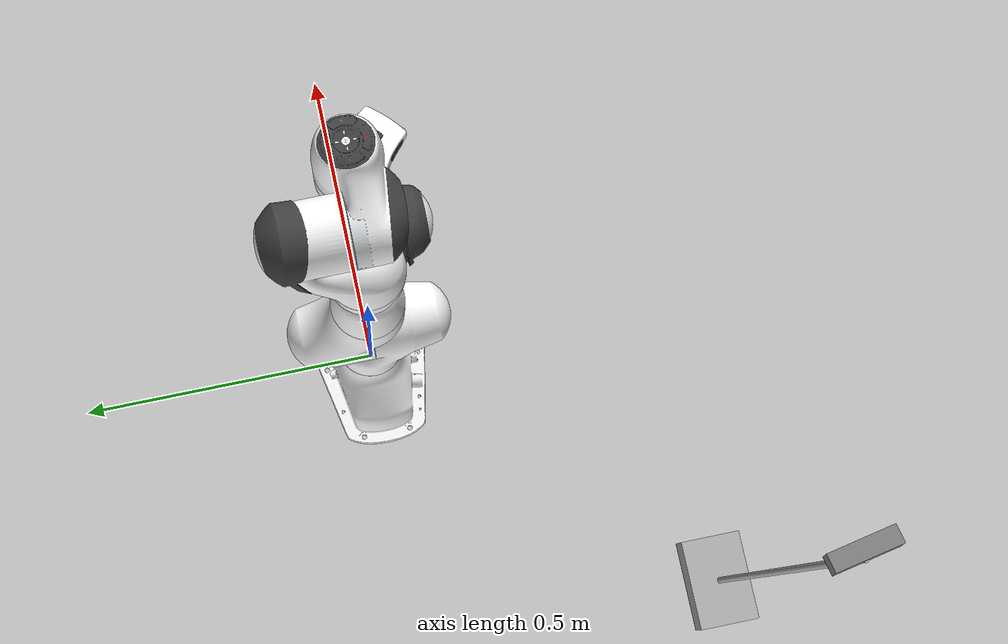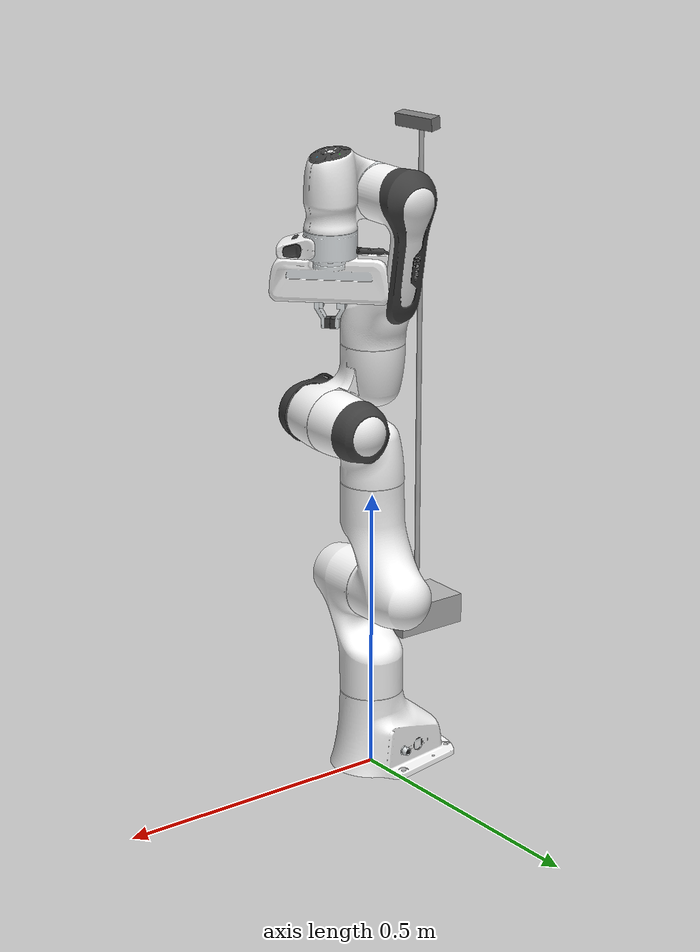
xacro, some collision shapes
<?xml version="1.0" ?>
<!-- |    This document was autogenerated by xacro from /opt/ros/kinetic/share/moveit_resources/panda_description/urdf/panda.urdf | -->
<!-- |    EDITING THIS FILE BY HAND IS NOT RECOMMENDED                                 | -->
<robot name="panda" xmlns:xacro="http://www.ros.org/wiki/xacro">
    <link name="panda_link0">
        <visual>
            <geometry>
                <mesh filename="package://arm_description/meshes/visual/link0.dae" />
            </geometry>
        </visual>
        <collision>
            <geometry>
                <mesh filename="package://arm_description/meshes/collision/link0.stl" />
            </geometry>
        </collision>
        <inertial>
          <origin xyz="-0.041018 -0.00014 0.049974" rpy="0 0 0" />
          <mass value="0.629769"/>
          <inertia ixx="0.00315" iyy="0.00388" izz="0.004285" ixy="8.2904E-7" ixz="0.00015" iyz="8.2299E-6"/>
        </inertial>
    </link>
    <!-- Add World Joint -->
    <link name="world"/>

    <joint name="world_joint" type="fixed">
        <parent link="world"/>
        <child link="panda_link0"/>
        <origin xyz="0.0 0 0" rpy="0 0 0"/>
    </joint>

    <link name="panda_link1">
        <visual>
            <geometry>
                <mesh filename="package://arm_description/meshes/visual/link1.dae" />
            </geometry>
        </visual>
        <collision>
            <geometry>
                <mesh filename="package://arm_description/meshes/collision/link1.stl" />
            </geometry>
        </collision>
        <inertial>
          <origin xyz="0.003875 0.002081 -0.04762" rpy="0 0 0" />
          <mass value="4.970684"/>
          <inertia ixx="0.70337" iyy="0.70661" izz="0.009117" ixy="-0.000139" ixz="0.006772" iyz="0.019169"/>
        </inertial>
    </link>
    <joint name="panda_joint1" type="revolute">
        <safety_controller k_position="100.0" k_velocity="40.0" soft_lower_limit="-2.8973" soft_upper_limit="2.8973" />
        <origin rpy="0 0 0" xyz="0 0 0.333" />
        <parent link="panda_link0" />
        <child link="panda_link1" />
        <axis xyz="0 0 1" />
        <limit effort="87" lower="-2.9671" upper="2.9671" velocity="2.3925" />
        <dynamics D="1" K="7000" damping="10" friction="0.1" mu_coulomb="0" mu_viscous="16" />
    </joint>
    <link name="panda_link2">
        <visual>
            <geometry>
                <mesh filename="package://arm_description/meshes/visual/link2.dae" />
            </geometry>
        </visual>
        <collision>
            <geometry>
                <mesh filename="package://arm_description/meshes/collision/link2.stl" />
            </geometry>
        </collision>
        <inertial>
          <origin xyz="-0.003141 -0.02872  0.003495" rpy="0 0 0" />
          <mass value="0.646926"/>
          <inertia ixx="0.007962" iyy="2.811E-2" izz="2.5995E-2" ixy="-3.925E-3" ixz="1.0254E-2" iyz="7.04E-4"/>
        </inertial>
    </link>
    <joint name="panda_joint2" type="revolute">
        <safety_controller k_position="100.0" k_velocity="40.0" soft_lower_limit="-1.7628" soft_upper_limit="1.7628" />
        <origin rpy="-1.57079632679 0 0" xyz="0 0 0" />
        <parent link="panda_link1" />
        <child link="panda_link2" />
        <axis xyz="0 0 1" />
        <limit effort="87" lower="-1.8326" upper="1.8326" velocity="2.3925" />
        <dynamics D="1" K="7000" damping="10" friction="0.1" mu_coulomb="0" mu_viscous="16" />
    </joint>
    <link name="panda_link3">
        <visual>
            <geometry>
                <mesh filename="package://arm_description/meshes/visual/link3.dae" />
            </geometry>
        </visual>
        <collision>
            <geometry>
                <mesh filename="package://arm_description/meshes/collision/link3.stl" />
            </geometry>
        </collision>
        <inertial>
          <origin xyz="2.7518E-2 3.9252E-2 -6.6502E-2" rpy="0 0 0" />
          <mass value="3.228604"/>
          <inertia ixx="3.7242E-2" iyy="3.6155E-2" izz="1.083E-2" ixy="-4.761E-3" ixz="-1.1396E-2" iyz="-1.2805E-2"/>
        </inertial>
    </link>
    <joint name="panda_joint3" type="revolute">
        <safety_controller k_position="100.0" k_velocity="40.0" soft_lower_limit="-2.8973" soft_upper_limit="2.8973" />
        <origin rpy="1.57079632679 0 0" xyz="0 -0.316 0" />
        <parent link="panda_link2" />
        <child link="panda_link3" />
        <axis xyz="0 0 1" />
        <limit effort="87" lower="-2.9671" upper="2.9671" velocity="2.3925" />
        <dynamics D="1" K="7000" damping="10" friction="0.1" mu_coulomb="0" mu_viscous="16" />
    </joint>
    <link name="panda_link4">
        <visual>
            <geometry>
                <mesh filename="package://arm_description/meshes/visual/link4.dae" />
            </geometry>
        </visual>
        <collision>
            <geometry>
                <mesh filename="package://arm_description/meshes/collision/link4.stl" />
            </geometry>
        </collision>
        <inertial>
          <origin xyz="-5.317E-2 1.04419E-1 2.7454E-2" rpy="0 0 0" />
          <mass value="3.587895"/>
          <inertia ixx="2.5853E-2" iyy="1.9552E-2" izz="2.8323E-2" ixy="7.796E-3" ixz="-1.332E-3" iyz="8.641E-3"/>
        </inertial>
    </link>
    <joint name="panda_joint4" type="revolute">
        <safety_controller k_position="100.0" k_velocity="40.0" soft_lower_limit="-3.0718" soft_upper_limit="0.0175" />
        <origin rpy="1.57079632679 0 0" xyz="0.0825 0 0" />
        <parent link="panda_link3" />
        <child link="panda_link4" />
        <axis xyz="0 0 1" />
        <limit effort="87" lower="-3.1416" upper="0.0873" velocity="2.3925" />
        <dynamics D="1" K="7000" damping="10" friction="0.1" mu_coulomb="0" mu_viscous="16" />
    </joint>
    <link name="panda_link5">
        <visual>
            <geometry>
                <mesh filename="package://arm_description/meshes/visual/link5.dae" />
            </geometry>
        </visual>
        <collision>
            <geometry>
                <mesh filename="package://arm_description/meshes/collision/link5.stl" />
            </geometry>
        </collision>
        <inertial>
          <origin xyz="-1.1953E-2 4.1065E-2 -3.8437E-2" rpy="0 0 0" />
          <mass value="1.225946"/>
          <inertia ixx="3.5549E-2" iyy="2.9474E-2" izz="8.627E-3" ixy="-2.117E-3" ixz="-4.037E-3" iyz="2.29E-4"/>
        </inertial>
    </link>
    <joint name="panda_joint5" type="revolute">
        <safety_controller k_position="100.0" k_velocity="40.0" soft_lower_limit="-2.8973" soft_upper_limit="2.8973" />
        <origin rpy="-1.57079632679 0 0" xyz="-0.0825 0.384 0" />
        <parent link="panda_link4" />
        <child link="panda_link5" />
        <axis xyz="0 0 1" />
        <limit effort="12" lower="-2.9671" upper="2.9671" velocity="2.8710" />
        <dynamics D="1" K="7000" damping="10" friction="0.1" mu_coulomb="0" mu_viscous="16" />
    </joint>
    <link name="panda_link6">
        <visual>
            <geometry>
                <mesh filename="package://arm_description/meshes/visual/link6.dae" />
            </geometry>
        </visual>
        <collision>
            <geometry>
                <mesh filename="package://arm_description/meshes/collision/link6.stl" />
            </geometry>
        </collision>
        <inertial>
          <origin xyz="6.0149E-2 -1.4117E-2 -1.0517E-2" rpy="0 0 0" />
          <mass value="1.666555"/>
          <inertia ixx="1.964E-3" iyy="4.354E-3" izz="5.433E-3" ixy="1.09E-4" ixz="-1.158E-3" iyz="3.41E-4"/>
        </inertial>
    </link>
    <joint name="panda_joint6" type="revolute">
        <safety_controller k_position="100.0" k_velocity="40.0" soft_lower_limit="-0.0175" soft_upper_limit="3.7525" />
        <origin rpy="1.57079632679 0 0" xyz="0 0 0" />
        <parent link="panda_link5" />
        <child link="panda_link6" />
        <axis xyz="0 0 1" />
        <limit effort="12" lower="-0.0873" upper="3.8223" velocity="2.8710" />
        <dynamics D="1" K="7000" damping="10" friction="0.1" mu_coulomb="0" mu_viscous="16" />
    </joint>
    <link name="panda_link7">
        <visual>
            <geometry>
                <mesh filename="package://arm_description/meshes/visual/link7.dae" />
            </geometry>
        </visual>
        <collision>
            <geometry>
                <mesh filename="package://arm_description/meshes/collision/link7.stl" />
            </geometry>
        </collision>
        <inertial>
          <origin xyz="1.0517E-2 -4.252E-3 6.1597E-2" rpy="0 0 0" />
          <mass value="7.35522E-1"/>
          <inertia ixx="1.2516E-2" iyy="1.0027E-2" izz="4.815E-3" ixy="-4.28E-4" ixz="-1.19E-3" iyz="-7.41E-4"/>
        </inertial>
    </link>
    <joint name="panda_joint7" type="revolute">
        <safety_controller k_position="100.0" k_velocity="40.0" soft_lower_limit="-2.8973" soft_upper_limit="2.8973" />
        <origin rpy="1.57079632679 0 0" xyz="0.088 0 0" />
        <parent link="panda_link6" />
        <child link="panda_link7" />
        <axis xyz="0 0 1" />
        <limit effort="12" lower="-2.9671" upper="2.9671" velocity="2.8710" />
        <dynamics D="1" K="7000" damping="10" friction="0.1" mu_coulomb="0" mu_viscous="16" />
    </joint>
    <link name="panda_link8" />
    <joint name="panda_joint8" type="fixed">
        <origin rpy="0 0 0" xyz="0 0 0.107" />
        <parent link="panda_link7" />
        <child link="panda_link8" />
        <axis xyz="0 0 0" />
    </joint>
    <joint name="panda_hand_joint" type="fixed">
        <parent link="panda_link8" />
        <child link="panda_hand" />
        <origin rpy="0 0 -0.785398163397" xyz="0 0 0" />
    </joint>
    <link name="panda_hand">
        <visual>
            <geometry>
                <mesh filename="package://arm_description/meshes/visual/hand.dae" />
            </geometry>
        </visual>
        <collision>
            <geometry>
                <mesh filename="package://arm_description/meshes/collision/hand.stl" />
            </geometry>
        </collision>
        <inertial>
          <origin xyz="-0.01 0 0.03" rpy="0 0 0" />
          <mass value="0.3"/>
          <inertia ixx="0.001" iyy="0.0025" izz="0.0017" ixy="0" ixz="0" iyz="0"/>
        </inertial>
    </link>
    <link name="panda_leftfinger">
        <visual>
            <geometry>
                <mesh filename="package://arm_description/meshes/visual/finger.dae" />
            </geometry>
        </visual>
        <collision>
            <geometry>
                <mesh filename="package://arm_description/meshes/collision/finger.stl" />
            </geometry>
        </collision>
        <inertial>
          <origin xyz="0 0 0" rpy="0 0 0" />
          <mass value="0.05"/>
          <inertia ixx="2.375E-6" iyy="2.375E-6" izz="7.5E-7" ixy="0" ixz="0" iyz="0"/>
        </inertial>
    </link>
    <link name="panda_rightfinger">
        <visual>
            <origin rpy="0 0 3.14159265359" xyz="0 0 0" />
            <geometry>
                <mesh filename="package://arm_description/meshes/visual/finger.dae" />
            </geometry>
        </visual>
        <collision>
            <origin rpy="0 0 3.14159265359" xyz="0 0 0" />
            <geometry>
                <mesh filename="package://arm_description/meshes/collision/finger.stl" />
            </geometry>
        </collision>
        <inertial>
          <origin xyz="0 0 0" rpy="0 0 0" />
          <mass value="0.05"/>
          <inertia ixx="2.375E-6" iyy="2.375E-6" izz="7.5E-7" ixy="0" ixz="0" iyz="0"/>
        </inertial>
    </link>
    <joint name="panda_finger_joint1" type="prismatic">
        <parent link="panda_hand" />
        <child link="panda_leftfinger" />
        <origin rpy="0 0 0" xyz="0 0 0.0584" />
        <axis xyz="0 1 0" />
        <limit effort="20" lower="0.0" upper="0.04" velocity="0.2" />
        <dynamics damping="0.3" />
    </joint>
    <joint name="panda_finger_joint2" type="prismatic">
        <parent link="panda_hand" />
        <child link="panda_rightfinger" />
        <origin rpy="0 0 0" xyz="0 0 0.0584" />
        <axis xyz="0 -1 0" />
        <limit effort="20" lower="0.0" upper="0.04" velocity="0.2" />
        <mimic joint="panda_finger_joint1" />
        <dynamics damping="0.3" />
    </joint>
    <!-- ROS Control -->
    <ros2_control name="panda_ros2_control" type="system">
    <hardware>
         <plugin>gz_ros2_control/GazeboSimSystem</plugin>
        </hardware>
        <joint name="panda_joint1">
            <command_interface name="position"/>
            <state_interface name="position">
              <param name="initial_value">0.0</param>
            </state_interface>
            <state_interface name="velocity">
              <param name="initial_value">0.0</param>
            </state_interface>
        </joint>
        <joint name="panda_joint2">
            <command_interface name="position"/>
            <state_interface name="position">
              <param name="initial_value">-0.785</param>
            </state_interface>
            <state_interface name="velocity">
              <param name="initial_value">0.0</param>
            </state_interface>
        </joint>
        <joint name="panda_joint3">
            <command_interface name="position"/>
            <state_interface name="position">
              <param name="initial_value">0</param>
            </state_interface>
            <state_interface name="velocity">
              <param name="initial_value">0.0</param>
            </state_interface>
        </joint>
        <joint name="panda_joint4">
            <command_interface name="position"/>
            <state_interface name="position">
              <param name="initial_value">-2.356</param>
            </state_interface>
            <state_interface name="velocity">
              <param name="initial_value">0.0</param>
            </state_interface>
        </joint>
        <joint name="panda_joint5">
            <command_interface name="position"/>
            <state_interface name="position">
              <param name="initial_value">0</param>
            </state_interface>
            <state_interface name="velocity">
              <param name="initial_value">0.0</param>

            </state_interface>
        </joint>
        <joint name="panda_joint6">
                <command_interface name="position"/>
                <state_interface name="position">
                  <param name="initial_value">1.571</param>
                </state_interface>
                <state_interface name="velocity">
                  <param name="initial_value">0.0</param>
                </state_interface>
            </joint>
            <joint name="panda_joint7">
                <command_interface name="position"/>
                <state_interface name="position">
                  <param name="initial_value">0.785</param>
                </state_interface>
                <state_interface name="velocity">
                  <param name="initial_value">0.0</param>

                </state_interface>
            </joint>
            <joint name="panda_finger_joint1">
                <command_interface name="position" />
                <state_interface name="position">
                  <param name="initial_value">0.0</param>
                </state_interface>
                <state_interface name="velocity">
                    <param name="initial_value">0.0</param>
                </state_interface>
            </joint>
            <joint name="panda_finger_joint2">
                <state_interface name="position">
                  <param name="initial_value">0.0</param>
                </state_interface>
                <state_interface name="velocity">
                    <param name="initial_value">0.0</param>
                </state_interface>
            </joint>
        </ros2_control>

<gazebo>
    <plugin filename="gz_ros2_control-system" name="gz_ros2_control::GazeboSimROS2ControlPlugin">
        <parameters>/home/admin/First_ROS2/arm_ws/src/arm_gazebo/config/controller.yaml</parameters>
    </plugin>
</gazebo>

<!-- Camera Module -->
<link name="camera_base_link">

    <visual name="holder">
      <origin rpy="0 0 0" xyz="-0.5 -0.5 0.5"/>
      <material name="LightGrey">
        <color rgba="0.7 0.7 0.7 1.0"/>
      </material>
      <geometry>
        <cylinder length="1.0" radius="0.005"/>
      </geometry>
    </visual>
    <collision name="holder">
      <origin rpy="0 0 0" xyz="-0.5 -0.5 0.5"/>
      <geometry>
        <cylinder length="1.0" radius="0.005"/>
      </geometry>
    </collision>

    <visual name="base">
      <origin rpy="0 0 0" xyz="-0.5 -0.5 0"/>
      <material name="LightGrey">
        <color rgba="0.7 0.7 0.7 1.0"/>
      </material>
      <geometry>
        <box size="0.15 0.10 0.06"/>
      </geometry>
    </visual>
    <collision name="base">
      <origin rpy="0 0 0" xyz="-0.5 -0.5 0.0"/>
      <geometry>
        <box size="0.15 0.10 0.06"/>
      </geometry>
    </collision>

    <inertial>
      <origin xyz="-0.5 -0.5 0.50"/>
      <mass value="2.5"/>
      <inertia ixx="0.8" ixy="0.0" ixz="0.0" iyy="0.8" iyz="0.0" izz="0.8"/>
    </inertial>
  </link>

<!-- Mount camera to Panda wrist -->
<joint name="camera_mount_joint" type="fixed">
  <parent link="panda_link0"/>
  <child link="camera_base_link"/>
  <origin xyz="0 0 0" rpy="0 0 0"/>
</joint>

  <link name="camera_head_link">
    <visual>
      <origin rpy="1.5707963267948966 0.0 1.5707963267948966" xyz="0 0 0"/>
      <geometry>
        <mesh filename="package://arm_description/meshes/collision/d435.stl"/>
      </geometry>
      <material name="aluminum">
        <color rgba="0.5 0.5 0.5 1"/>
      </material>
    </visual>
    <collision>
      <origin rpy="0 0 0" xyz="0 0 0"/>
      <geometry>
        <box size="0.02505 0.09 0.025"/>
      </geometry>
    </collision>
    <inertial>
      <mass value="0.072"/>
      <origin xyz="0 0 0"/>
      <inertia ixx="0.003881243" ixy="0.0" ixz="0.0" iyy="0.000498940" iyz="0.0" izz="0.003879257"/>
    </inertial>
  </link>

  <joint name="camera_head_joint" type="fixed">
    <parent link="camera_base_link"/>
    <child link="camera_head_link"/>
    <origin rpy="0 0.12 0.2" xyz="-0.49 -0.5 1"/>
  </joint>

  <joint name="camera_head_depth_joint" type="fixed">
    <origin rpy="0 0 0" xyz="0 0 0"/>
    <parent link="camera_head_link"/>
    <child link="camera_head_depth_frame"/>
  </joint>
  <link name="camera_head_depth_frame"/>

  <joint name="camera_head_depth_optical_joint" type="fixed">
    <origin rpy="-1.5707963267948966 0 -1.5707963267948966" xyz="0 0 0"/>
    <parent link="camera_head_depth_frame"/>
    <child link="camera_head_depth_optical_frame"/>
  </joint>
  <link name="camera_head_depth_optical_frame"/>

  <joint name="camera_head_infra1_joint" type="fixed">
    <origin rpy="0 0 0" xyz="0 0.0 0"/>
    <parent link="camera_head_link"/>
    <child link="camera_head_infra1_frame"/>
  </joint>
  <link name="camera_head_infra1_frame"/>

  <joint name="camera_head_infra1_optical_joint" type="fixed">
    <origin rpy="-1.5707963267948966 0 -1.5707963267948966" xyz="0 0 0"/>
    <parent link="camera_head_infra1_frame"/>
    <child link="camera_head_infra1_optical_frame"/>
  </joint>
  <link name="camera_head_infra1_optical_frame"/>

  <joint name="camera_head_infra2_joint" type="fixed">
    <origin rpy="0 0 0" xyz="0 -0.05 0"/>
    <parent link="camera_head_link"/>
    <child link="camera_head_infra2_frame"/>
  </joint>
  <link name="camera_head_infra2_frame"/>

  <joint name="camera_head_infra2_optical_joint" type="fixed">
    <origin rpy="-1.5707963267948966 0 -1.5707963267948966" xyz="0 0 0"/>
    <parent link="camera_head_infra2_frame"/>
    <child link="camera_head_infra2_optical_frame"/>
  </joint>
  <link name="camera_head_infra2_optical_frame"/>

  <joint name="camera_head_color_joint" type="fixed">
    <origin rpy="0 0 0" xyz="0 0.015 0"/>
    <parent link="camera_head_link"/>
    <child link="camera_head_color_frame"/>
  </joint>
  <link name="camera_head_color_frame"/>

  <joint name="camera_head_color_optical_joint" type="fixed">
    <origin rpy="-1.5707963267948966 0 -1.5707963267948966" xyz="0 0 0"/>
    <parent link="camera_head_color_frame"/>
    <child link="camera_head_color_optical_frame"/>
  </joint>
  <link name="camera_head_color_optical_frame"/>

  <gazebo reference="camera_head_link">
    <sensor name="camera_head" type="depth_camera">
      <camera>
        <horizontal_fov>2.0</horizontal_fov>
        <image>
          <width>500</width>
          <height>240</height>
        </image>
        <clip>
          <near>0.05</near>
          <far>5.0</far>
        </clip>
      </camera>
      <always_on>1</always_on>
      <gz_frame_id>camera_head_link</gz_frame_id>
      <topic>camera_head</topic>
      <update_rate>5</update_rate>
      <visualize>true</visualize>
    </sensor>
  </gazebo>

</robot>
